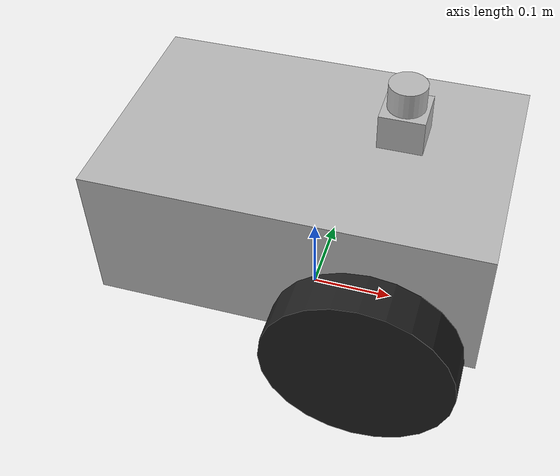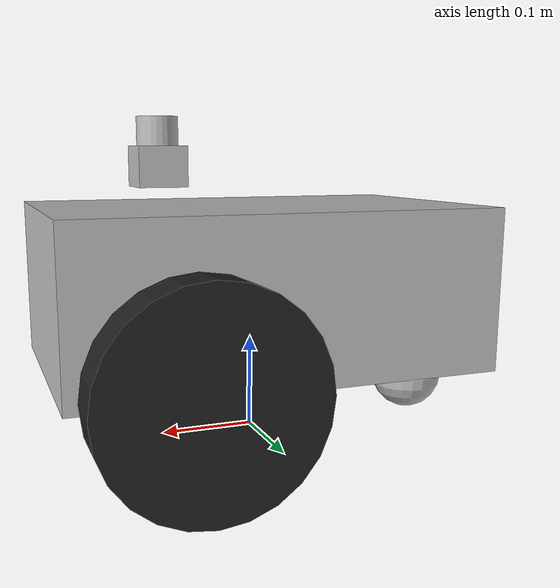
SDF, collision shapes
<?xml version='1.0'?>
<sdf version='1.7'>
  <model name='pioneer2dx'>
    <link name='chassis'>
      <pose>0 0 0.16 0 -0 0</pose>
      <inertial>
        <mass>5.67</mass>
        <inertia>
          <ixx>0.07</ixx>
          <iyy>0.08</iyy>
          <izz>0.1</izz>
          <ixy>0</ixy>
          <ixz>0</ixz>
          <iyz>0</iyz>
        </inertia>
        <pose>0 0 0 0 -0 0</pose>
      </inertial>
      <self_collide>0</self_collide>
      <enable_wind>0</enable_wind>
      <kinematic>0</kinematic>
      <visual name='visual'>
        <pose>0 0 0.04 0 -0 0</pose>
        <geometry>
          <mesh>
            <uri>model://pioneer2dx/meshes/chassis.dae</uri>
          </mesh>
        </geometry>
        <material>
          <shader type='pixel'/>
        </material>
        <transparency>0</transparency>
        <cast_shadows>1</cast_shadows>
      </visual>
      <visual name='castor_visual'>
        <pose>-0.2 0 -0.12 0 -0 0</pose>
        <geometry>
          <sphere>
            <radius>0.04</radius>
          </sphere>
        </geometry>
        <material>
          <script>
            <uri>file://media/materials/scripts/gazebo.material</uri>
            <name>Gazebo/FlatBlack</name>
          </script>
          <shader type='pixel'/>
        </material>
        <transparency>0</transparency>
        <cast_shadows>1</cast_shadows>
      </visual>
      <collision name='collision'>
        <laser_retro>0</laser_retro>
        <max_contacts>10</max_contacts>
        <pose>0 0 0 0 -0 0</pose>
        <geometry>
          <box>
            <size>0.445 0.277 0.17</size>
          </box>
        </geometry>
        <surface>
          <friction>
            <ode>
              <mu>1</mu>
              <mu2>1</mu2>
              <fdir1>0 0 0</fdir1>
              <slip1>0</slip1>
              <slip2>0</slip2>
            </ode>
            <torsional>
              <coefficient>1</coefficient>
              <patch_radius>0</patch_radius>
              <surface_radius>0</surface_radius>
              <use_patch_radius>1</use_patch_radius>
              <ode>
                <slip>0</slip>
              </ode>
            </torsional>
          </friction>
          <bounce>
            <restitution_coefficient>0</restitution_coefficient>
            <threshold>1e+06</threshold>
          </bounce>
          <contact>
            <collide_without_contact>0</collide_without_contact>
            <collide_without_contact_bitmask>1</collide_without_contact_bitmask>
            <collide_bitmask>1</collide_bitmask>
            <ode>
              <soft_cfm>0</soft_cfm>
              <soft_erp>0.2</soft_erp>
              <kp>1e+13</kp>
              <kd>1</kd>
              <max_vel>0.01</max_vel>
              <min_depth>0</min_depth>
            </ode>
            <bullet>
              <split_impulse>1</split_impulse>
              <split_impulse_penetration_threshold>-0.01</split_impulse_penetration_threshold>
              <soft_cfm>0</soft_cfm>
              <soft_erp>0.2</soft_erp>
              <kp>1e+13</kp>
              <kd>1</kd>
            </bullet>
          </contact>
        </surface>
      </collision>
      <collision name='castor_collision'>
        <laser_retro>0</laser_retro>
        <max_contacts>10</max_contacts>
        <pose>-0.2 0 -0.12 0 -0 0</pose>
        <geometry>
          <sphere>
            <radius>0.04</radius>
          </sphere>
        </geometry>
        <surface>
          <friction>
            <ode>
              <mu>0</mu>
              <mu2>0</mu2>
              <fdir1>0 0 0</fdir1>
              <slip1>1</slip1>
              <slip2>1</slip2>
            </ode>
            <torsional>
              <coefficient>1</coefficient>
              <patch_radius>0</patch_radius>
              <surface_radius>0</surface_radius>
              <use_patch_radius>1</use_patch_radius>
              <ode>
                <slip>0</slip>
              </ode>
            </torsional>
          </friction>
          <bounce>
            <restitution_coefficient>0</restitution_coefficient>
            <threshold>1e+06</threshold>
          </bounce>
          <contact>
            <collide_without_contact>0</collide_without_contact>
            <collide_without_contact_bitmask>1</collide_without_contact_bitmask>
            <collide_bitmask>1</collide_bitmask>
            <ode>
              <soft_cfm>0</soft_cfm>
              <soft_erp>0.2</soft_erp>
              <kp>1e+13</kp>
              <kd>1</kd>
              <max_vel>0.01</max_vel>
              <min_depth>0</min_depth>
            </ode>
            <bullet>
              <split_impulse>1</split_impulse>
              <split_impulse_penetration_threshold>-0.01</split_impulse_penetration_threshold>
              <soft_cfm>0</soft_cfm>
              <soft_erp>0.2</soft_erp>
              <kp>1e+13</kp>
              <kd>1</kd>
            </bullet>
          </contact>
        </surface>
      </collision>
    </link>
    <link name='hokuyo::link'>
      <inertial>
        <mass>0.1</mass>
        <inertia>
          <ixx>1</ixx>
          <ixy>0</ixy>
          <ixz>0</ixz>
          <iyy>1</iyy>
          <iyz>0</iyz>
          <izz>1</izz>
        </inertia>
        <pose>0 0 0 0 -0 0</pose>
      </inertial>
      <sensor name='laser' type='gpu_ray'>
        <pose>0.01 0 0.0175 0 -0 0</pose>
        <ray>
          <scan>
            <horizontal>
              <samples>640</samples>
              <resolution>1</resolution>
              <min_angle>-2.26889</min_angle>
              <max_angle>2.2689</max_angle>
            </horizontal>
            <vertical>
              <samples>1</samples>
              <min_angle>0</min_angle>
              <max_angle>0</max_angle>
            </vertical>
          </scan>
          <range>
            <min>0.08</min>
            <max>10</max>
            <resolution>0.01</resolution>
          </range>
        </ray>
        <always_on>1</always_on>
        <update_rate>30</update_rate>
        <visualize>1</visualize>
      </sensor>
      <pose>0.1 -0 0.3 0 -0 0</pose>
      <self_collide>0</self_collide>
      <enable_wind>0</enable_wind>
      <kinematic>0</kinematic>
      <visual name='visual'>
        <geometry>
          <mesh>
            <uri>model://hokuyo/meshes/hokuyo.dae</uri>
          </mesh>
        </geometry>
        <material>
          <shader type='pixel'/>
        </material>
        <pose>0 0 0 0 -0 0</pose>
        <transparency>0</transparency>
        <cast_shadows>1</cast_shadows>
      </visual>
      <collision name='collision-base'>
        <laser_retro>0</laser_retro>
        <max_contacts>10</max_contacts>
        <pose>0 0 -0.0145 0 -0 0</pose>
        <geometry>
          <box>
            <size>0.05 0.05 0.041</size>
          </box>
        </geometry>
        <surface>
          <friction>
            <ode>
              <mu>1</mu>
              <mu2>1</mu2>
              <fdir1>0 0 0</fdir1>
              <slip1>0</slip1>
              <slip2>0</slip2>
            </ode>
            <torsional>
              <coefficient>1</coefficient>
              <patch_radius>0</patch_radius>
              <surface_radius>0</surface_radius>
              <use_patch_radius>1</use_patch_radius>
              <ode>
                <slip>0</slip>
              </ode>
            </torsional>
          </friction>
          <bounce>
            <restitution_coefficient>0</restitution_coefficient>
            <threshold>1e+06</threshold>
          </bounce>
          <contact>
            <collide_without_contact>0</collide_without_contact>
            <collide_without_contact_bitmask>1</collide_without_contact_bitmask>
            <collide_bitmask>1</collide_bitmask>
            <ode>
              <soft_cfm>0</soft_cfm>
              <soft_erp>0.2</soft_erp>
              <kp>1e+13</kp>
              <kd>1</kd>
              <max_vel>0.01</max_vel>
              <min_depth>0</min_depth>
            </ode>
            <bullet>
              <split_impulse>1</split_impulse>
              <split_impulse_penetration_threshold>-0.01</split_impulse_penetration_threshold>
              <soft_cfm>0</soft_cfm>
              <soft_erp>0.2</soft_erp>
              <kp>1e+13</kp>
              <kd>1</kd>
            </bullet>
          </contact>
        </surface>
      </collision>
      <collision name='collision-top'>
        <laser_retro>0</laser_retro>
        <max_contacts>10</max_contacts>
        <pose>0 0 0.0205 0 -0 0</pose>
        <geometry>
          <cylinder>
            <radius>0.021</radius>
            <length>0.029</length>
          </cylinder>
        </geometry>
        <surface>
          <friction>
            <ode>
              <mu>1</mu>
              <mu2>1</mu2>
              <fdir1>0 0 0</fdir1>
              <slip1>0</slip1>
              <slip2>0</slip2>
            </ode>
            <torsional>
              <coefficient>1</coefficient>
              <patch_radius>0</patch_radius>
              <surface_radius>0</surface_radius>
              <use_patch_radius>1</use_patch_radius>
              <ode>
                <slip>0</slip>
              </ode>
            </torsional>
          </friction>
          <bounce>
            <restitution_coefficient>0</restitution_coefficient>
            <threshold>1e+06</threshold>
          </bounce>
          <contact>
            <collide_without_contact>0</collide_without_contact>
            <collide_without_contact_bitmask>1</collide_without_contact_bitmask>
            <collide_bitmask>1</collide_bitmask>
            <ode>
              <soft_cfm>0</soft_cfm>
              <soft_erp>0.2</soft_erp>
              <kp>1e+13</kp>
              <kd>1</kd>
              <max_vel>0.01</max_vel>
              <min_depth>0</min_depth>
            </ode>
            <bullet>
              <split_impulse>1</split_impulse>
              <split_impulse_penetration_threshold>-0.01</split_impulse_penetration_threshold>
              <soft_cfm>0</soft_cfm>
              <soft_erp>0.2</soft_erp>
              <kp>1e+13</kp>
              <kd>1</kd>
            </bullet>
          </contact>
        </surface>
      </collision>
    </link>
    <link name='left_wheel'>
      <pose>0.1 0.17 0.087223 0.000273 1.5707 1.57097</pose>
      <inertial>
        <mass>1.5</mass>
        <inertia>
          <ixx>0.0051</ixx>
          <iyy>0.0051</iyy>
          <izz>0.009</izz>
          <ixy>0</ixy>
          <ixz>0</ixz>
          <iyz>0</iyz>
        </inertia>
        <pose>0 0 0 0 -0 0</pose>
      </inertial>
      <self_collide>0</self_collide>
      <enable_wind>0</enable_wind>
      <kinematic>0</kinematic>
      <gravity>1</gravity>
      <visual name='visual'>
        <geometry>
          <cylinder>
            <radius>0.11</radius>
            <length>0.05</length>
          </cylinder>
        </geometry>
        <material>
          <script>
            <uri>file://media/materials/scripts/gazebo.material</uri>
            <name>Gazebo/FlatBlack</name>
          </script>
          <shader type='pixel'>
            <normal_map>__default__</normal_map>
          </shader>
          <ambient>0.1 0.1 0.1 1</ambient>
          <diffuse>0.1 0.1 0.1 1</diffuse>
          <specular>0.01 0.01 0.01 1</specular>
          <emissive>0 0 0 1</emissive>
        </material>
        <pose>0 0 0 0 -0 0</pose>
        <transparency>0</transparency>
        <cast_shadows>1</cast_shadows>
      </visual>
      <collision name='collision'>
        <laser_retro>0</laser_retro>
        <max_contacts>10</max_contacts>
        <pose>0 0 0 0 -0 0</pose>
        <geometry>
          <cylinder>
            <radius>0.11</radius>
            <length>0.05</length>
          </cylinder>
        </geometry>
        <surface>
          <friction>
            <ode>
              <mu>100000</mu>
              <mu2>100000</mu2>
              <fdir1>0 0 0</fdir1>
              <slip1>0</slip1>
              <slip2>0</slip2>
            </ode>
            <torsional>
              <coefficient>1</coefficient>
              <patch_radius>0</patch_radius>
              <surface_radius>0</surface_radius>
              <use_patch_radius>1</use_patch_radius>
              <ode>
                <slip>0</slip>
              </ode>
            </torsional>
          </friction>
          <bounce>
            <restitution_coefficient>0</restitution_coefficient>
            <threshold>1e+06</threshold>
          </bounce>
          <contact>
            <collide_without_contact>0</collide_without_contact>
            <collide_without_contact_bitmask>1</collide_without_contact_bitmask>
            <collide_bitmask>1</collide_bitmask>
            <ode>
              <soft_cfm>0</soft_cfm>
              <soft_erp>0.2</soft_erp>
              <kp>1e+13</kp>
              <kd>1</kd>
              <max_vel>0.01</max_vel>
              <min_depth>0</min_depth>
            </ode>
            <bullet>
              <split_impulse>1</split_impulse>
              <split_impulse_penetration_threshold>-0.01</split_impulse_penetration_threshold>
              <soft_cfm>0</soft_cfm>
              <soft_erp>0.2</soft_erp>
              <kp>1e+13</kp>
              <kd>1</kd>
            </bullet>
          </contact>
        </surface>
      </collision>
    </link>
    <link name='right_wheel'>
      <pose>0.1 -0.169982 0.087223 0.000273 1.5707 1.57097</pose>
      <inertial>
        <mass>1.5</mass>
        <inertia>
          <ixx>0.0051</ixx>
          <iyy>0.0051</iyy>
          <izz>0.009</izz>
          <ixy>0</ixy>
          <ixz>0</ixz>
          <iyz>0</iyz>
        </inertia>
        <pose>0 0 0 0 -0 0</pose>
      </inertial>
      <self_collide>0</self_collide>
      <enable_wind>0</enable_wind>
      <kinematic>0</kinematic>
      <gravity>1</gravity>
      <visual name='visual'>
        <geometry>
          <cylinder>
            <radius>0.11</radius>
            <length>0.05</length>
          </cylinder>
        </geometry>
        <material>
          <script>
            <uri>file://media/materials/scripts/gazebo.material</uri>
            <name>Gazebo/FlatBlack</name>
          </script>
          <shader type='pixel'>
            <normal_map>__default__</normal_map>
          </shader>
          <ambient>0.1 0.1 0.1 1</ambient>
          <diffuse>0.1 0.1 0.1 1</diffuse>
          <specular>0.01 0.01 0.01 1</specular>
          <emissive>0 0 0 1</emissive>
        </material>
        <pose>0 0 0 0 -0 0</pose>
        <transparency>0</transparency>
        <cast_shadows>1</cast_shadows>
      </visual>
      <collision name='collision'>
        <laser_retro>0</laser_retro>
        <max_contacts>10</max_contacts>
        <pose>0 0 0 0 -0 0</pose>
        <geometry>
          <cylinder>
            <radius>0.11</radius>
            <length>0.05</length>
          </cylinder>
        </geometry>
        <surface>
          <friction>
            <ode>
              <mu>100000</mu>
              <mu2>100000</mu2>
              <fdir1>0 0 0</fdir1>
              <slip1>0</slip1>
              <slip2>0</slip2>
            </ode>
            <torsional>
              <coefficient>1</coefficient>
              <patch_radius>0</patch_radius>
              <surface_radius>0</surface_radius>
              <use_patch_radius>1</use_patch_radius>
              <ode>
                <slip>0</slip>
              </ode>
            </torsional>
          </friction>
          <bounce>
            <restitution_coefficient>0</restitution_coefficient>
            <threshold>1e+06</threshold>
          </bounce>
          <contact>
            <collide_without_contact>0</collide_without_contact>
            <collide_without_contact_bitmask>1</collide_without_contact_bitmask>
            <collide_bitmask>1</collide_bitmask>
            <ode>
              <soft_cfm>0</soft_cfm>
              <soft_erp>0.2</soft_erp>
              <kp>1e+13</kp>
              <kd>1</kd>
              <max_vel>0.01</max_vel>
              <min_depth>0</min_depth>
            </ode>
            <bullet>
              <split_impulse>1</split_impulse>
              <split_impulse_penetration_threshold>-0.01</split_impulse_penetration_threshold>
              <soft_cfm>0</soft_cfm>
              <soft_erp>0.2</soft_erp>
              <kp>1e+13</kp>
              <kd>1</kd>
            </bullet>
          </contact>
        </surface>
      </collision>
    </link>
    <joint name='hokuyo_joint' type='fixed'>
      <parent>chassis</parent>
      <child>hokuyo::link</child>
      <pose>0 0 0 0 -0 0</pose>
      <physics>
        <ode>
          <limit>
            <cfm>0</cfm>
            <erp>0.2</erp>
          </limit>
          <suspension>
            <cfm>0</cfm>
            <erp>0.2</erp>
          </suspension>
        </ode>
      </physics>
    </joint>
    <joint name='left_wheel_hinge' type='revolute'>
      <parent>chassis</parent>
      <child>left_wheel</child>
      <pose>0 0 -0.03 0 -0 0</pose>
      <axis>
        <xyz>9.6e-05 9.6e-05 1</xyz>
        <limit>
          <lower>-1e+16</lower>
          <upper>1e+16</upper>
          <effort>-1</effort>
          <velocity>-1</velocity>
        </limit>
        <dynamics>
          <spring_reference>0</spring_reference>
          <spring_stiffness>0</spring_stiffness>
          <damping>0</damping>
          <friction>0</friction>
        </dynamics>
      </axis>
      <physics>
        <ode>
          <limit>
            <cfm>0</cfm>
            <erp>0.2</erp>
          </limit>
          <suspension>
            <cfm>0</cfm>
            <erp>0.2</erp>
          </suspension>
        </ode>
      </physics>
    </joint>
    <joint name='right_wheel_hinge' type='revolute'>
      <parent>chassis</parent>
      <child>right_wheel</child>
      <pose>0 0 0.03 0 -0 0</pose>
      <axis>
        <xyz>9.6e-05 9.6e-05 1</xyz>
        <limit>
          <lower>-1e+16</lower>
          <upper>1e+16</upper>
          <effort>-1</effort>
          <velocity>-1</velocity>
        </limit>
        <dynamics>
          <spring_reference>0</spring_reference>
          <spring_stiffness>0</spring_stiffness>
          <damping>0</damping>
          <friction>0</friction>
        </dynamics>
      </axis>
      <physics>
        <ode>
          <limit>
            <cfm>0</cfm>
            <erp>0.2</erp>
          </limit>
          <suspension>
            <cfm>0</cfm>
            <erp>0.2</erp>
          </suspension>
        </ode>
      </physics>
    </joint>
    <static>0</static>
    <allow_auto_disable>1</allow_auto_disable>
  </model>
</sdf>
